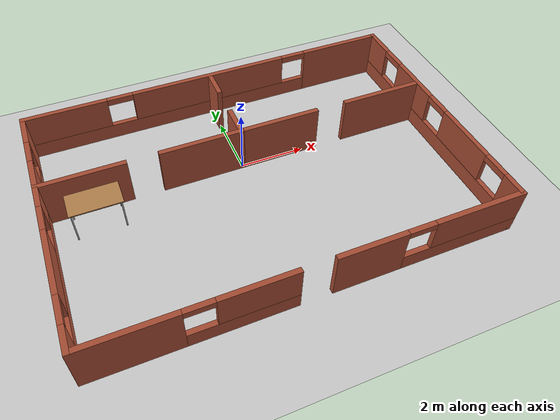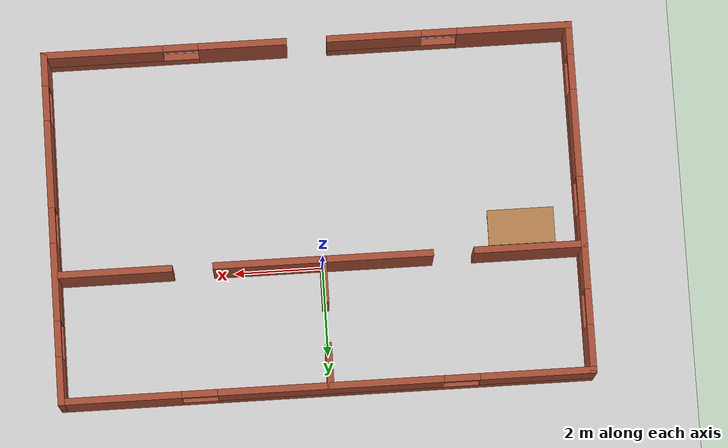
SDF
<sdf version="1.7">
 <world name="default">
  <light name="sun" type="directional">
   <pose>0 0 10 0 -0 0</pose>
   <diffuse>0.8 0.8 0.8 1</diffuse>
   <specular>0.2 0.2 0.2 1</specular>
   <attenuation>
    <range>1000</range>
    <constant>0.9</constant>
    <linear>0.01</linear>
    <quadratic>0.001</quadratic>
   </attenuation>
   <direction>-0.5 0.1 -0.9</direction>
   <spot><inner_angle>0</inner_angle><outer_angle>0</outer_angle><falloff>0</falloff></spot>
  </light>
  <model name="ground_plane">
   <static>1</static>
   <link name="link">
    <collision name="collision">
     <geometry><plane><normal>0 0 1</normal><size>100 100</size></plane></geometry>
     <surface>
      <contact><collide_bitmask>65535</collide_bitmask></contact>
      <friction><ode><mu>100</mu><mu2>100</mu2></ode></friction>
     </surface>
    </collision>
    <visual name="visual">
     <cast_shadows>0</cast_shadows>
     <geometry><plane><normal>0 0 1</normal><size>100 100</size></plane></geometry>
     <material>
      <script><uri>file://media/materials/scripts/gazebo.material</uri><name>Gazebo/Grey</name></script>
     </material>
    </visual>
   </link>
  </model>
  <gravity>0 0 -9.8</gravity>
  <magnetic_field>6e-06 2.3e-05 -4.2e-05</magnetic_field>
  <atmosphere type="adiabatic"/>
  <physics type="ode">
   <max_step_size>0.001</max_step_size>
   <real_time_factor>1</real_time_factor>
   <real_time_update_rate>1000</real_time_update_rate>
  </physics>
  <scene><ambient>0.4 0.4 0.4 1</ambient><background>0.7 0.7 0.7 1</background><shadows>1</shadows></scene>
  <spherical_coordinates>
   <surface_model>EARTH_WGS84</surface_model>
   <latitude_deg>0</latitude_deg>
   <longitude_deg>0</longitude_deg>
   <elevation>0</elevation>
   <heading_deg>0</heading_deg>
  </spherical_coordinates>
  <model name="short_room">
   <pose>0.065755 -1.41444 0 0 -0 0</pose>
   <link name="Wall_16">
    <pose>-5.9245 0.33 0 0 -0 -1.5708</pose>
    <visual name="Wall_16_Visual_0">
     <pose>-3.4545 0 0.75 0 -0 0</pose>
     <geometry><box><size>1.091 0.15 1.5</size></box></geometry>
     <material>
      <script><uri>file://media/materials/scripts/gazebo.material</uri><name>Gazebo/Bricks</name></script>
      <ambient>1 1 1 1</ambient>
     </material>
     <meta><layer>0</layer></meta>
    </visual>
    <collision name="Wall_16_Collision_0">
     <geometry><box><size>1.091 0.15 1.5</size></box></geometry>
     <pose>-3.4545 0 0.75 0 -0 0</pose>
    </collision>
    <visual name="Wall_16_Visual_1">
     <pose>0.5455 0 0.25 0 -0 0</pose>
     <geometry><box><size>6.909 0.15 0.5</size></box></geometry>
     <material>
      <script><uri>file://media/materials/scripts/gazebo.material</uri><name>Gazebo/Bricks</name></script>
      <ambient>1 1 1 1</ambient>
     </material>
     <meta><layer>0</layer></meta>
    </visual>
    <collision name="Wall_16_Collision_1">
     <geometry><box><size>6.909 0.15 0.5</size></box></geometry>
     <pose>0.5455 0 0.25 0 -0 0</pose>
    </collision>
    <visual name="Wall_16_Visual_2">
     <pose>-1.23069 0 1 0 -0 0</pose>
     <geometry><box><size>1.75663 0.15 1</size></box></geometry>
     <material>
      <script><uri>file://media/materials/scripts/gazebo.material</uri><name>Gazebo/Bricks</name></script>
      <ambient>1 1 1 1</ambient>
     </material>
     <meta><layer>0</layer></meta>
    </visual>
    <collision name="Wall_16_Collision_2">
     <geometry><box><size>1.75663 0.15 1</size></box></geometry>
     <pose>-1.23069 0 1 0 -0 0</pose>
    </collision>
    <visual name="Wall_16_Visual_3">
     <pose>1.44233 0 1 0 -0 0</pose>
     <geometry><box><size>1.9894 0.15 1</size></box></geometry>
     <material>
      <script><uri>file://media/materials/scripts/gazebo.material</uri><name>Gazebo/Bricks</name></script>
      <ambient>1 1 1 1</ambient>
     </material>
     <meta><layer>0</layer></meta>
    </visual>
    <collision name="Wall_16_Collision_3">
     <geometry><box><size>1.9894 0.15 1</size></box></geometry>
     <pose>1.44233 0 1 0 -0 0</pose>
    </collision>
    <visual name="Wall_16_Visual_4">
     <pose>3.61851 0 1 0 -0 0</pose>
     <geometry><box><size>0.762973 0.15 1</size></box></geometry>
     <material>
      <script><uri>file://media/materials/scripts/gazebo.material</uri><name>Gazebo/Bricks</name></script>
      <ambient>1 1 1 1</ambient>
     </material>
     <meta><layer>0</layer></meta>
    </visual>
    <collision name="Wall_16_Collision_4">
     <geometry><box><size>0.762973 0.15 1</size></box></geometry>
     <pose>3.61851 0 1 0 -0 0</pose>
    </collision>
    <visual name="Wall_16_Visual_5">
     <pose>-2.509 0 1.4 0 -0 0</pose>
     <geometry><box><size>0.8 0.15 0.2</size></box></geometry>
     <material>
      <script><uri>file://media/materials/scripts/gazebo.material</uri><name>Gazebo/Bricks</name></script>
      <ambient>1 1 1 1</ambient>
     </material>
     <meta><layer>0</layer></meta>
    </visual>
    <collision name="Wall_16_Collision_5">
     <geometry><box><size>0.8 0.15 0.2</size></box></geometry>
     <pose>-2.509 0 1.4 0 -0 0</pose>
    </collision>
    <visual name="Wall_16_Visual_6">
     <pose>0.047629 0 1.4 0 -0 0</pose>
     <geometry><box><size>0.8 0.15 0.2</size></box></geometry>
     <material>
      <script><uri>file://media/materials/scripts/gazebo.material</uri><name>Gazebo/Bricks</name></script>
      <ambient>1 1 1 1</ambient>
     </material>
     <meta><layer>0</layer></meta>
    </visual>
    <collision name="Wall_16_Collision_6">
     <geometry><box><size>0.8 0.15 0.2</size></box></geometry>
     <pose>0.047629 0 1.4 0 -0 0</pose>
    </collision>
    <visual name="Wall_16_Visual_7">
     <pose>2.83703 0 1.4 0 -0 0</pose>
     <geometry><box><size>0.8 0.15 0.2</size></box></geometry>
     <material>
      <script><uri>file://media/materials/scripts/gazebo.material</uri><name>Gazebo/Bricks</name></script>
      <ambient>1 1 1 1</ambient>
     </material>
     <meta><layer>0</layer></meta>
    </visual>
    <collision name="Wall_16_Collision_7">
     <geometry><box><size>0.8 0.15 0.2</size></box></geometry>
     <pose>2.83703 0 1.4 0 -0 0</pose>
    </collision>
   </link>
   <link name="Wall_17">
    <pose>0.0005 -3.595 0 0 -0 0</pose>
    <visual name="Wall_17_Visual_0">
     <pose>-4.7005 0 0.75 0 -0 0</pose>
     <geometry><box><size>2.599 0.15 1.5</size></box></geometry>
     <material>
      <script><uri>file://media/materials/scripts/gazebo.material</uri><name>Gazebo/Bricks</name></script>
      <ambient>1 1 1 1</ambient>
     </material>
     <meta><layer>0</layer></meta>
    </visual>
    <collision name="Wall_17_Collision_0">
     <geometry><box><size>2.599 0.15 1.5</size></box></geometry>
     <pose>-4.7005 0 0.75 0 -0 0</pose>
    </collision>
    <visual name="Wall_17_Visual_1">
     <pose>1.44509 0 0.75 0 -0 0</pose>
     <geometry><box><size>2.00581 0.15 1.5</size></box></geometry>
     <material>
      <script><uri>file://media/materials/scripts/gazebo.material</uri><name>Gazebo/Bricks</name></script>
      <ambient>1 1 1 1</ambient>
     </material>
     <meta><layer>0</layer></meta>
    </visual>
    <collision name="Wall_17_Collision_1">
     <geometry><box><size>2.00581 0.15 1.5</size></box></geometry>
     <pose>1.44509 0 0.75 0 -0 0</pose>
    </collision>
    <visual name="Wall_17_Visual_2">
     <pose>-1.92941 0 0.25 0 -0 0</pose>
     <geometry><box><size>2.94319 0.15 0.5</size></box></geometry>
     <material>
      <script><uri>file://media/materials/scripts/gazebo.material</uri><name>Gazebo/Bricks</name></script>
      <ambient>1 1 1 1</ambient>
     </material>
     <meta><layer>0</layer></meta>
    </visual>
    <collision name="Wall_17_Collision_2">
     <geometry><box><size>2.94319 0.15 0.5</size></box></geometry>
     <pose>-1.92941 0 0.25 0 -0 0</pose>
    </collision>
    <visual name="Wall_17_Visual_3">
     <pose>4.224 0 0.25 0 -0 0</pose>
     <geometry><box><size>3.552 0.15 0.5</size></box></geometry>
     <material>
      <script><uri>file://media/materials/scripts/gazebo.material</uri><name>Gazebo/Bricks</name></script>
      <ambient>1 1 1 1</ambient>
     </material>
     <meta><layer>0</layer></meta>
    </visual>
    <collision name="Wall_17_Collision_3">
     <geometry><box><size>3.552 0.15 0.5</size></box></geometry>
     <pose>4.224 0 0.25 0 -0 0</pose>
    </collision>
    <visual name="Wall_17_Visual_4">
     <pose>-1.52941 0 1 0 -0 0</pose>
     <geometry><box><size>2.14319 0.15 1</size></box></geometry>
     <material>
      <script><uri>file://media/materials/scripts/gazebo.material</uri><name>Gazebo/Bricks</name></script>
      <ambient>1 1 1 1</ambient>
     </material>
     <meta><layer>0</layer></meta>
    </visual>
    <collision name="Wall_17_Collision_4">
     <geometry><box><size>2.14319 0.15 1</size></box></geometry>
     <pose>-1.52941 0 1 0 -0 0</pose>
    </collision>
    <visual name="Wall_17_Visual_5">
     <pose>-1.52941 0 1 0 -0 0</pose>
     <geometry><box><size>2.14319 0.15 1</size></box></geometry>
     <material>
      <script><uri>file://media/materials/scripts/gazebo.material</uri><name>Gazebo/Bricks</name></script>
      <ambient>1 1 1 1</ambient>
     </material>
     <meta><layer>0</layer></meta>
    </visual>
    <collision name="Wall_17_Collision_5">
     <geometry><box><size>2.14319 0.15 1</size></box></geometry>
     <pose>-1.52941 0 1 0 -0 0</pose>
    </collision>
    <visual name="Wall_17_Visual_6">
     <pose>4.624 0 1 0 -0 0</pose>
     <geometry><box><size>2.752 0.15 1</size></box></geometry>
     <material>
      <script><uri>file://media/materials/scripts/gazebo.material</uri><name>Gazebo/Bricks</name></script>
      <ambient>1 1 1 1</ambient>
     </material>
     <meta><layer>0</layer></meta>
    </visual>
    <collision name="Wall_17_Collision_6">
     <geometry><box><size>2.752 0.15 1</size></box></geometry>
     <pose>4.624 0 1 0 -0 0</pose>
    </collision>
    <visual name="Wall_17_Visual_7">
     <pose>-3.001 0 1.4 0 -0 0</pose>
     <geometry><box><size>0.8 0.15 0.2</size></box></geometry>
     <material>
      <script><uri>file://media/materials/scripts/gazebo.material</uri><name>Gazebo/Bricks</name></script>
      <ambient>1 1 1 1</ambient>
     </material>
     <meta><layer>0</layer></meta>
    </visual>
    <collision name="Wall_17_Collision_7">
     <geometry><box><size>0.8 0.15 0.2</size></box></geometry>
     <pose>-3.001 0 1.4 0 -0 0</pose>
    </collision>
    <visual name="Wall_17_Visual_8">
     <pose>2.848 0 1.4 0 -0 0</pose>
     <geometry><box><size>0.8 0.15 0.2</size></box></geometry>
     <material>
      <script><uri>file://media/materials/scripts/gazebo.material</uri><name>Gazebo/Bricks</name></script>
      <ambient>1 1 1 1</ambient>
     </material>
     <meta><layer>0</layer></meta>
    </visual>
    <collision name="Wall_17_Collision_8">
     <geometry><box><size>0.8 0.15 0.2</size></box></geometry>
     <pose>2.848 0 1.4 0 -0 0</pose>
    </collision>
   </link>
   <link name="Wall_18">
    <pose>5.9255 0.33 0 0 -0 1.5708</pose>
    <visual name="Wall_18_Visual_0">
     <pose>-3.6185 0 0.75 0 -0 0</pose>
     <geometry><box><size>0.763 0.15 1.5</size></box></geometry>
     <material>
      <script><uri>file://media/materials/scripts/gazebo.material</uri><name>Gazebo/Bricks</name></script>
      <ambient>1 1 1 1</ambient>
     </material>
     <meta><layer>0</layer></meta>
    </visual>
    <collision name="Wall_18_Collision_0">
     <geometry><box><size>0.763 0.15 1.5</size></box></geometry>
     <pose>-3.6185 0 0.75 0 -0 0</pose>
    </collision>
    <visual name="Wall_18_Visual_1">
     <pose>0.3815 0 0.25 0 -0 0</pose>
     <geometry><box><size>7.237 0.15 0.5</size></box></geometry>
     <material>
      <script><uri>file://media/materials/scripts/gazebo.material</uri><name>Gazebo/Bricks</name></script>
      <ambient>1 1 1 1</ambient>
     </material>
     <meta><layer>0</layer></meta>
    </visual>
    <collision name="Wall_18_Collision_1">
     <geometry><box><size>7.237 0.15 0.5</size></box></geometry>
     <pose>0.3815 0 0.25 0 -0 0</pose>
    </collision>
    <visual name="Wall_18_Visual_2">
     <pose>-1.4425 0 1 0 -0 0</pose>
     <geometry><box><size>1.989 0.15 1</size></box></geometry>
     <material>
      <script><uri>file://media/materials/scripts/gazebo.material</uri><name>Gazebo/Bricks</name></script>
      <ambient>1 1 1 1</ambient>
     </material>
     <meta><layer>0</layer></meta>
    </visual>
    <collision name="Wall_18_Collision_2">
     <geometry><box><size>1.989 0.15 1</size></box></geometry>
     <pose>-1.4425 0 1 0 -0 0</pose>
    </collision>
    <visual name="Wall_18_Visual_3">
     <pose>1.2305 0 1 0 -0 0</pose>
     <geometry><box><size>1.757 0.15 1</size></box></geometry>
     <material>
      <script><uri>file://media/materials/scripts/gazebo.material</uri><name>Gazebo/Bricks</name></script>
      <ambient>1 1 1 1</ambient>
     </material>
     <meta><layer>0</layer></meta>
    </visual>
    <collision name="Wall_18_Collision_3">
     <geometry><box><size>1.757 0.15 1</size></box></geometry>
     <pose>1.2305 0 1 0 -0 0</pose>
    </collision>
    <visual name="Wall_18_Visual_4">
     <pose>3.4545 0 1 0 -0 0</pose>
     <geometry><box><size>1.091 0.15 1</size></box></geometry>
     <material>
      <script><uri>file://media/materials/scripts/gazebo.material</uri><name>Gazebo/Bricks</name></script>
      <ambient>1 1 1 1</ambient>
     </material>
     <meta><layer>0</layer></meta>
    </visual>
    <collision name="Wall_18_Collision_4">
     <geometry><box><size>1.091 0.15 1</size></box></geometry>
     <pose>3.4545 0 1 0 -0 0</pose>
    </collision>
    <visual name="Wall_18_Visual_5">
     <pose>-2.837 0 1.4 0 -0 0</pose>
     <geometry><box><size>0.8 0.15 0.2</size></box></geometry>
     <material>
      <script><uri>file://media/materials/scripts/gazebo.material</uri><name>Gazebo/Bricks</name></script>
      <ambient>1 1 1 1</ambient>
     </material>
     <meta><layer>0</layer></meta>
    </visual>
    <collision name="Wall_18_Collision_5">
     <geometry><box><size>0.8 0.15 0.2</size></box></geometry>
     <pose>-2.837 0 1.4 0 -0 0</pose>
    </collision>
    <visual name="Wall_18_Visual_6">
     <pose>-0.048 0 1.4 0 -0 0</pose>
     <geometry><box><size>0.8 0.15 0.2</size></box></geometry>
     <material>
      <script><uri>file://media/materials/scripts/gazebo.material</uri><name>Gazebo/Bricks</name></script>
      <ambient>1 1 1 1</ambient>
     </material>
     <meta><layer>0</layer></meta>
    </visual>
    <collision name="Wall_18_Collision_6">
     <geometry><box><size>0.8 0.15 0.2</size></box></geometry>
     <pose>-0.048 0 1.4 0 -0 0</pose>
    </collision>
    <visual name="Wall_18_Visual_7">
     <pose>2.509 0 1.4 0 -0 0</pose>
     <geometry><box><size>0.8 0.15 0.2</size></box></geometry>
     <material>
      <script><uri>file://media/materials/scripts/gazebo.material</uri><name>Gazebo/Bricks</name></script>
      <ambient>1 1 1 1</ambient>
     </material>
     <meta><layer>0</layer></meta>
    </visual>
    <collision name="Wall_18_Collision_7">
     <geometry><box><size>0.8 0.15 0.2</size></box></geometry>
     <pose>2.509 0 1.4 0 -0 0</pose>
    </collision>
   </link>
   <link name="Wall_19">
    <pose>0.0005 4.255 0 0 -0 3.14159</pose>
    <visual name="Wall_19_Visual_0">
     <pose>-4.624 0 0.75 0 -0 0</pose>
     <geometry><box><size>2.752 0.15 1.5</size></box></geometry>
     <material>
      <script><uri>file://media/materials/scripts/gazebo.material</uri><name>Gazebo/Bricks</name></script>
      <ambient>1 1 1 1</ambient>
     </material>
     <meta><layer>0</layer></meta>
    </visual>
    <collision name="Wall_19_Collision_0">
     <geometry><box><size>2.752 0.15 1.5</size></box></geometry>
     <pose>-4.624 0 0.75 0 -0 0</pose>
    </collision>
    <visual name="Wall_19_Visual_1">
     <pose>1.376 0 0.25 0 -0 0</pose>
     <geometry><box><size>9.248 0.15 0.5</size></box></geometry>
     <material>
      <script><uri>file://media/materials/scripts/gazebo.material</uri><name>Gazebo/Bricks</name></script>
      <ambient>1 1 1 1</ambient>
     </material>
     <meta><layer>0</layer></meta>
    </visual>
    <collision name="Wall_19_Collision_1">
     <geometry><box><size>9.248 0.15 0.5</size></box></geometry>
     <pose>1.376 0 0.25 0 -0 0</pose>
    </collision>
    <visual name="Wall_19_Visual_2">
     <pose>0.0765 0 1 0 -0 0</pose>
     <geometry><box><size>5.049 0.15 1</size></box></geometry>
     <material>
      <script><uri>file://media/materials/scripts/gazebo.material</uri><name>Gazebo/Bricks</name></script>
      <ambient>1 1 1 1</ambient>
     </material>
     <meta><layer>0</layer></meta>
    </visual>
    <collision name="Wall_19_Collision_2">
     <geometry><box><size>5.049 0.15 1</size></box></geometry>
     <pose>0.0765 0 1 0 -0 0</pose>
    </collision>
    <visual name="Wall_19_Visual_3">
     <pose>4.7005 0 1 0 -0 0</pose>
     <geometry><box><size>2.599 0.15 1</size></box></geometry>
     <material>
      <script><uri>file://media/materials/scripts/gazebo.material</uri><name>Gazebo/Bricks</name></script>
      <ambient>1 1 1 1</ambient>
     </material>
     <meta><layer>0</layer></meta>
    </visual>
    <collision name="Wall_19_Collision_3">
     <geometry><box><size>2.599 0.15 1</size></box></geometry>
     <pose>4.7005 0 1 0 -0 0</pose>
    </collision>
    <visual name="Wall_19_Visual_4">
     <pose>-2.848 0 1.4 0 -0 0</pose>
     <geometry><box><size>0.8 0.15 0.2</size></box></geometry>
     <material>
      <script><uri>file://media/materials/scripts/gazebo.material</uri><name>Gazebo/Bricks</name></script>
      <ambient>1 1 1 1</ambient>
     </material>
     <meta><layer>0</layer></meta>
    </visual>
    <collision name="Wall_19_Collision_4">
     <geometry><box><size>0.8 0.15 0.2</size></box></geometry>
     <pose>-2.848 0 1.4 0 -0 0</pose>
    </collision>
    <visual name="Wall_19_Visual_5">
     <pose>3.001 0 1.4 0 -0 0</pose>
     <geometry><box><size>0.8 0.15 0.2</size></box></geometry>
     <material>
      <script><uri>file://media/materials/scripts/gazebo.material</uri><name>Gazebo/Bricks</name></script>
      <ambient>1 1 1 1</ambient>
     </material>
     <meta><layer>0</layer></meta>
    </visual>
    <collision name="Wall_19_Collision_5">
     <geometry><box><size>0.8 0.15 0.2</size></box></geometry>
     <pose>3.001 0 1.4 0 -0 0</pose>
    </collision>
   </link>
   <link name="Wall_22">
    <pose>-0.075 2.8335 0 0 -0 -1.57115</pose>
    <visual name="Wall_22_Visual_0">
     <pose>-0.975794 0 0.75 0 -0 0</pose>
     <geometry><box><size>1.04058 0.15 1.5</size></box></geometry>
     <material>
      <script><uri>file://media/materials/scripts/gazebo.material</uri><name>Gazebo/Bricks</name></script>
      <ambient>1 1 1 1</ambient>
     </material>
     <meta><layer>0</layer></meta>
    </visual>
    <collision name="Wall_22_Collision_0">
     <geometry><box><size>1.04058 0.15 1.5</size></box></geometry>
     <pose>-0.975794 0 0.75 0 -0 0</pose>
    </collision>
    <visual name="Wall_22_Visual_1">
     <pose>0.97029 0 0.75 0 -0 0</pose>
     <geometry><box><size>1.05159 0.15 1.5</size></box></geometry>
     <material>
      <script><uri>file://media/materials/scripts/gazebo.material</uri><name>Gazebo/Bricks</name></script>
      <ambient>1 1 1 1</ambient>
     </material>
     <meta><layer>0</layer></meta>
    </visual>
    <collision name="Wall_22_Collision_1">
     <geometry><box><size>1.05159 0.15 1.5</size></box></geometry>
     <pose>0.97029 0 0.75 0 -0 0</pose>
    </collision>
   </link>
   <link name="Wall_23">
    <pose>2.8595 1.412 0 0 -0 0</pose>
    <visual name="Wall_23_Visual_0">
     <pose>-1.73529 0 0.75 0 -0 0</pose>
     <geometry><box><size>2.54943 0.15 1.5</size></box></geometry>
     <material>
      <script><uri>file://media/materials/scripts/gazebo.material</uri><name>Gazebo/Bricks</name></script>
      <ambient>1 1 1 1</ambient>
     </material>
     <meta><layer>0</layer></meta>
    </visual>
    <collision name="Wall_23_Collision_0">
     <geometry><box><size>2.54943 0.15 1.5</size></box></geometry>
     <pose>-1.73529 0 0.75 0 -0 0</pose>
    </collision>
    <visual name="Wall_23_Visual_1">
     <pose>1.72471 0 0.75 0 -0 0</pose>
     <geometry><box><size>2.57057 0.15 1.5</size></box></geometry>
     <material>
      <script><uri>file://media/materials/scripts/gazebo.material</uri><name>Gazebo/Bricks</name></script>
      <ambient>1 1 1 1</ambient>
     </material>
     <meta><layer>0</layer></meta>
    </visual>
    <collision name="Wall_23_Collision_1">
     <geometry><box><size>2.57057 0.15 1.5</size></box></geometry>
     <pose>1.72471 0 0.75 0 -0 0</pose>
    </collision>
   </link>
   <link name="Wall_25">
    <pose>-3.0005 1.412 0 0 -0 3.14159</pose>
    <visual name="Wall_25_Visual_0">
     <pose>-1.72497 0 0.75 0 -0 0</pose>
     <geometry><box><size>2.55005 0.15 1.5</size></box></geometry>
     <material>
      <script><uri>file://media/materials/scripts/gazebo.material</uri><name>Gazebo/Bricks</name></script>
      <ambient>1 1 1 1</ambient>
     </material>
     <meta><layer>0</layer></meta>
    </visual>
    <collision name="Wall_25_Collision_0">
     <geometry><box><size>2.55005 0.15 1.5</size></box></geometry>
     <pose>-1.72497 0 0.75 0 -0 0</pose>
    </collision>
    <visual name="Wall_25_Visual_1">
     <pose>1.72503 0 0.75 0 -0 0</pose>
     <geometry><box><size>2.54995 0.15 1.5</size></box></geometry>
     <material>
      <script><uri>file://media/materials/scripts/gazebo.material</uri><name>Gazebo/Bricks</name></script>
      <ambient>1 1 1 1</ambient>
     </material>
     <meta><layer>0</layer></meta>
    </visual>
    <collision name="Wall_25_Collision_1">
     <geometry><box><size>2.54995 0.15 1.5</size></box></geometry>
     <pose>1.72503 0 0.75 0 -0 0</pose>
    </collision>
   </link>
   <static>1</static>
  </model>
  <model name="table">
   <static>1</static>
   <link name="link">
    <collision name="surface">
     <pose>0 0 1 0 -0 0</pose>
     <geometry><box><size>1.5 0.8 0.03</size></box></geometry>
     <surface><friction><ode><mu>0.6</mu><mu2>0.6</mu2></ode></friction></surface>
    </collision>
    <visual name="visual1">
     <pose>0 0 1 0 -0 0</pose>
     <geometry><box><size>1.5 0.8 0.03</size></box></geometry>
     <material>
      <script><uri>file://media/materials/scripts/gazebo.material</uri><name>Gazebo/Wood</name></script>
     </material>
    </visual>
    <collision name="front_left_leg_collision">
     <pose>0.68 0.38 0.5 0 -0 0</pose>
     <geometry><cylinder><radius>0.02</radius><length>1</length></cylinder></geometry>
    </collision>
    <visual name="front_left_leg">
     <pose>0.68 0.38 0.5 0 -0 0</pose>
     <geometry><cylinder><radius>0.02</radius><length>1</length></cylinder></geometry>
     <material>
      <script><uri>file://media/materials/scripts/gazebo.material</uri><name>Gazebo/Grey</name></script>
     </material>
    </visual>
    <collision name="front_right_leg_collision">
     <pose>0.68 -0.38 0.5 0 -0 0</pose>
     <geometry><cylinder><radius>0.02</radius><length>1</length></cylinder></geometry>
    </collision>
    <visual name="front_right_leg">
     <pose>0.68 -0.38 0.5 0 -0 0</pose>
     <geometry><cylinder><radius>0.02</radius><length>1</length></cylinder></geometry>
     <material>
      <script><uri>file://media/materials/scripts/gazebo.material</uri><name>Gazebo/Grey</name></script>
     </material>
    </visual>
    <collision name="back_right_leg_collision">
     <pose>-0.68 -0.38 0.5 0 -0 0</pose>
     <geometry><cylinder><radius>0.02</radius><length>1</length></cylinder></geometry>
    </collision>
    <visual name="back_right_leg">
     <pose>-0.68 -0.38 0.5 0 -0 0</pose>
     <geometry><cylinder><radius>0.02</radius><length>1</length></cylinder></geometry>
     <material>
      <script><uri>file://media/materials/scripts/gazebo.material</uri><name>Gazebo/Grey</name></script>
     </material>
    </visual>
    <collision name="back_left_leg_collision">
     <pose>-0.68 0.38 0.5 0 -0 0</pose>
     <geometry><cylinder><radius>0.02</radius><length>1</length></cylinder></geometry>
    </collision>
    <visual name="back_left_leg">
     <pose>-0.68 0.38 0.5 0 -0 0</pose>
     <geometry><cylinder><radius>0.02</radius><length>1</length></cylinder></geometry>
     <material>
      <script><uri>file://media/materials/scripts/gazebo.material</uri><name>Gazebo/Grey</name></script>
     </material>
    </visual>
   </link>
   <pose>-4.50284 -0.555946 0 0 -0 0</pose>
  </model>
 </world>
</sdf>
